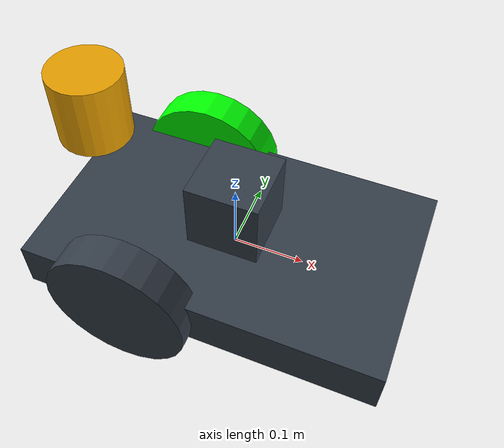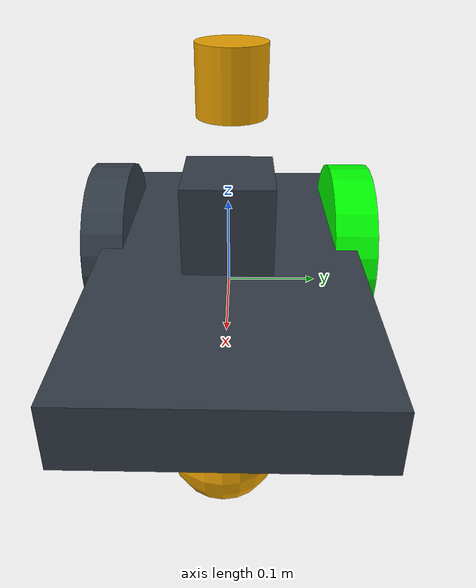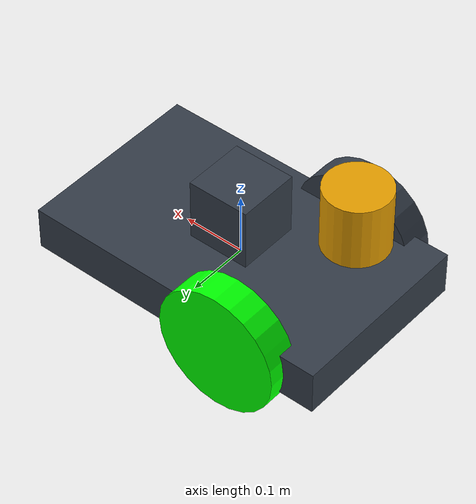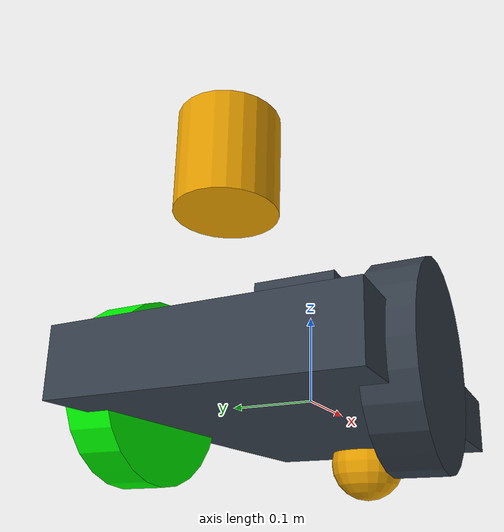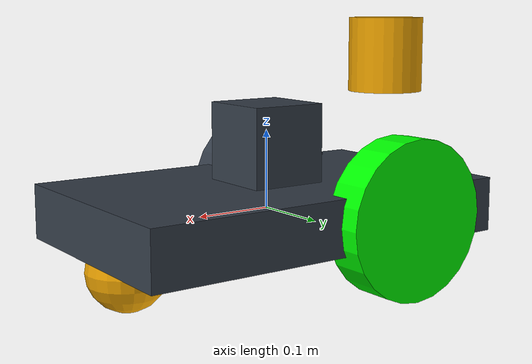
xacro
<?xml version='1.0'?>
<robot name="erl1" xmlns:xacro="http://www.ros.org/wiki/xacro">

    <!-- Load physical properties -->
    <xacro:include filename="$(find erl1)/urdf/erl1.gazebo" />

    <!-- Properties -->
    <xacro:property name="length_wheel" value="0.05" />
    <xacro:property name="radius_wheel" value="0.1" />
    <xacro:property name="length_prism" value="0.03" />
    <xacro:property name="width_prism" value="0.03" />
    <xacro:property name="height_prism" value="0.6" />

    <!-- Macros -->
    <xacro:macro name="default_inertial" params="mass">
        <inertial>
            <mass value="${mass}" />
            <origin rpy="0 1.5707 1.5707" xyz="0 0 0"/>
            <inertia
                ixx="${mass*(3*radius_wheel**2+length_wheel**2)/12}" ixy="0" ixz="0"
                iyy="${mass*(3*radius_wheel**2+length_wheel**2)/12}" iyz="0"
                izz="${mass*radius_wheel**2/2}"/>
        </inertial>
    </xacro:macro>

    <xacro:macro name="default_interial_box" params="mass">
        <inertial>
            <mass value="${mass}" />
            <origin rpy="0 0 0" xyz="0 0 0.3"/>
            <inertia
                ixx="${mass*(width_prism**2+height_prism**2)/12}" ixy="0" ixz="0"
                iyy="${mass*(length_prism**2+height_prism**2)/12}" iyz="0"
                izz="${mass*(length_prism**2+width_prism**2)/12}"/>
        </inertial>
    </xacro:macro>

    <xacro:macro name="wheel_geometry">
        <geometry>
            <cylinder length="${length_wheel}" radius="${radius_wheel}"/>
        </geometry>
    </xacro:macro>

    <xacro:macro name="prism_geometry">
        <geometry>
            <box size="${length_prism} ${width_prism} ${height_prism}"/>
        </geometry>
    </xacro:macro>

    <!-- Colors -->
    <material name="blue">
        <color rgba="0.203125 0.23828125 0.28515625 1.0"/>
    </material>

    <material name="green">
        <color rgba="0.0 1.0 0.0 1.0"/>
    </material>

    <material name="red">
        <color rgba="1.0 0.0 0.0 1.0"/>
    </material>

    <material name= "orange">
        <color rgba="1.0 0.5 0.0 1.0"/>
    </material>

    <!-- Your Existing Link -->
    <link name="link_chassis">
        <inertial>
            <mass value="5"/>
            <origin rpy="0 0 0" xyz="0 0 0.1"/>
            <inertia ixx="0.0395416666667" ixy="0" ixz="0" iyy="0.106208333333" iyz="0" izz="0.141666666667"/>
        </inertial>
        <collision name="collision_chassis">
            <geometry>
                <box size="0.5 0.3 0.07"/>
            </geometry>
        </collision>
        <visual>
            <origin rpy="0 0 0" xyz="0 0 0"/>
            <geometry>
                <box size="0.5 0.3 0.07"/>
            </geometry>
            <material name="blue"/>
        </visual>

        <!-- caster front -->
        <collision name="caster_front_collision">
            <origin rpy="0 0 0" xyz="0.2 0 -0.05"/>
            <geometry>
                <sphere radius="0.05"/>
            </geometry>
        </collision>
        <visual name="caster_front_visual">
            <origin rpy="0 0 0" xyz="0.2 0 -0.05"/>
            <geometry>
                <sphere radius="0.05"/>
            </geometry>
        </visual>
    </link>

    <!-- Left Wheel -->
    <link name="left_wheel">
        <xacro:default_inertial mass="5.0"/>
        <collision>
            <origin xyz="0 0 0" rpy="0 1.5707 1.5707"/>
            <xacro:wheel_geometry/>
        </collision>
        <visual name="left_wheel_visual">
            <origin xyz="0 0 0" rpy="0 1.5707 1.5707"/>
            <xacro:wheel_geometry/>
            <material name="green"/>
        </visual>
    </link>

    <!-- Right Wheel -->
    <link name="right_wheel">
        <xacro:default_inertial mass="5.0"/>
        <collision>
            <origin xyz="0 0 0" rpy="0 1.5707 1.5707"/>
            <xacro:wheel_geometry/>
        </collision>
        <visual name="right_wheel_visual">
            <origin xyz="0 0 0" rpy="0 1.5707 1.5707"/>
            <xacro:wheel_geometry/>
            <material name="blue"/>
        </visual>
    </link>

    <!-- Base -->
    <link name="base">
        <inertial>
            <mass value="2.0"/>
            <origin rpy="0 0 0" xyz="0 0 0"/>
            <inertia ixx="0.0027" ixy="0" ixz="0" iyy="0.0027" iyz="0" izz="0.0027"/>
        </inertial>
        <collision>
            <origin xyz="0 0 0" rpy="0 0 0"/>
            <geometry>
                <box size="0.09 0.09 0.09"/>
            </geometry>
        </collision>
        <visual name="base_visual">
            <origin xyz="0 0 0" rpy="0 0 0"/>
            <geometry>
                <box size="0.09 0.09 0.09"/>
            </geometry>
            <material name="orange"/>
        </visual>
    </link>

    <!-- Camera -->
    <link name="camera_link">
        <visual name="camera_link">
            <origin xyz="0 0 0.05" rpy="0 0 0"/>
            <geometry>
                <box size="0.1 0.1 0.1"/>
            </geometry>
            <material name="blue"/>
        </visual>
        <collision>
        <origin xyz="0 0 0.05" rpy="0 0 0"/>
            <geometry>
                <box size="0.1 0.1 0.1"/>
            </geometry>
        </collision>
        <inertial>
            <mass value="0.3"/>
            <origin xyz="0 0 0.05" rpy="0 0 0"/>
            <inertia
                ixx="0.0005" ixy="0" ixz="0"
                iyy="0.0005" iyz="0"
                izz="0.0005"/>
            </inertial>
    </link>

    <link name="camera_link_optical">
    </link>

    <!-- IMU -->
    <link name="imu_link">
        <inertial>
            <mass value="1e-5"/>
            <origin xyz="0 0 0" rpy="0 0 0"/>
            <inertia ixx="1e-6" ixy="0" ixz="0" iyy="1e-6" iyz="0" izz="1e-6"/>
        </inertial>
    </link>

    <!-- GPS -->
    <link name="navsat_link">
        <inertial>
            <mass value="1e-5"/>
            <origin xyz="0 0 0" rpy="0 0 0"/>
            <inertia ixx="1e-6" ixy="0" ixz="0" iyy="1e-6" iyz="0" izz="1e-6"/>
        </inertial>
    </link>

    <!-- LiDar -->

    <link name='scan_link'>
        <inertial>
            <mass value="1e-5"/>
            <origin xyz="0 0 0" rpy="0 0 0"/>
            <inertia ixx="1e-6" ixy="0" ixz="0" iyy="1e-6" iyz="0" izz="1e-6"/>
        </inertial>
        <collision name='collision'>
            <origin xyz="0 0 0" rpy="0 0 0"/>
            <geometry>
                <box size=".1 .1 .1"/>
            </geometry>
        </collision>
        <visual name='scan_link_visual'>
            <origin xyz="0 0 0" rpy="0 0 0"/>
            <geometry>
                <cylinder radius="0.05" length="0.1"/>
            </geometry>
        </visual>
    </link>

    <!-- Joints Right Wheel -->
    <joint type="continuous"
        name="right_wheel_joint">
        <origin xyz="-0.1 -0.15 0" rpy="0 0 0"/>
        <child link="right_wheel"/>
        <parent link="link_chassis"/>
        <axis xyz="0 1 0"/>
        <limit effort="100" velocity="10"/>
        <dynamics damping="1.0" friction="1.0"/>
    </joint>

    <!-- Joints Left Wheel -->
    <joint type="continuous"
        name="left_wheel_joint">
        <origin xyz="-0.1 0.15 0" rpy="0 0 0"/>
        <child link="left_wheel"/>
        <parent link="link_chassis"/>
        <axis xyz="0 1 0"/>
        <limit effort="100" velocity="10"/>
        <dynamics damping="1.0" friction="1.0"/>
    </joint>

    <!-- Joint Base -->
    <joint type="continuous"
        name="base_joint">
        <origin xyz="0 0 0.08" rpy="0 0 0"/>
        <child link="base"/>
        <parent link="link_chassis"/>
        <axis xyz="0 0 1"/>
        <limit effort="100" velocity="10"/>
        <dynamics damping="1.0" friction="1.0"/>
    </joint>

    <!-- Joint Camera-->
    <joint type="revolute"
        name="camera_joint">
        <parent link="link_chassis"/>
        <child link="camera_link"/>
        <origin xyz="0 0 0.035" rpy="0 0 0"/>
        <axis xyz="0 0 1"/>
        <limit lower="-1.57" upper="1.57" effort="5"
        velocity="1.0"/>
    </joint>

    <joint type="fixed"
        name="camera_optical_joint">
        <origin xyz="0 0 0" rpy="-1.5707 0 -1.5707"/>
        <child link="camera_link_optical"/>
        <parent link="camera_link"/>
    </joint>

    <!-- IMU -->
    <joint name="imu_joint" type="fixed">
        <origin xyz="0 0 0" rpy="0 0 0" />
        <parent link="link_chassis"/>
        <child link="imu_link" />
    </joint>

    <!-- GPS -->
    <joint name="navsat_joint" type="fixed">
        <origin xyz="0 0 0" rpy="0 0 0"/>
        <parent link="link_chassis"/>
        <child link="navsat_link" />
    </joint>

    <!-- LiDar -->
    <joint type="fixed" name="scan_joint">
        <origin xyz="-0.2 0 0.19" rpy="0 0 0"/>
        <child link="scan_link"/>
        <parent link="link_chassis"/>
    </joint>

</robot>
